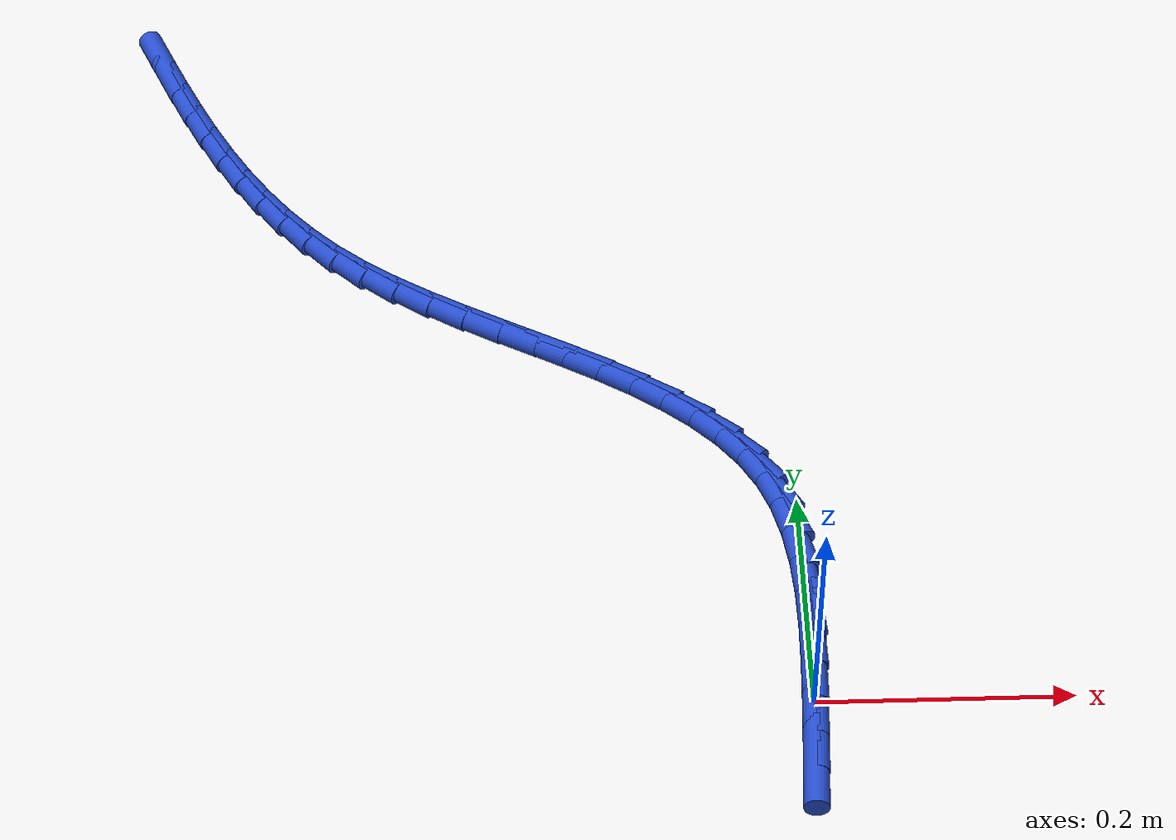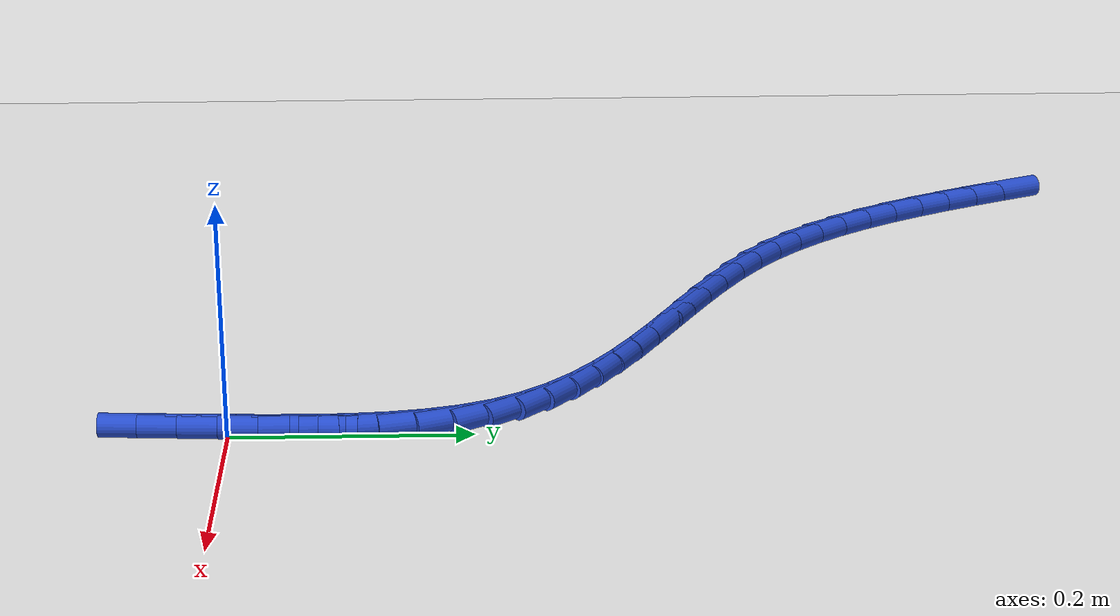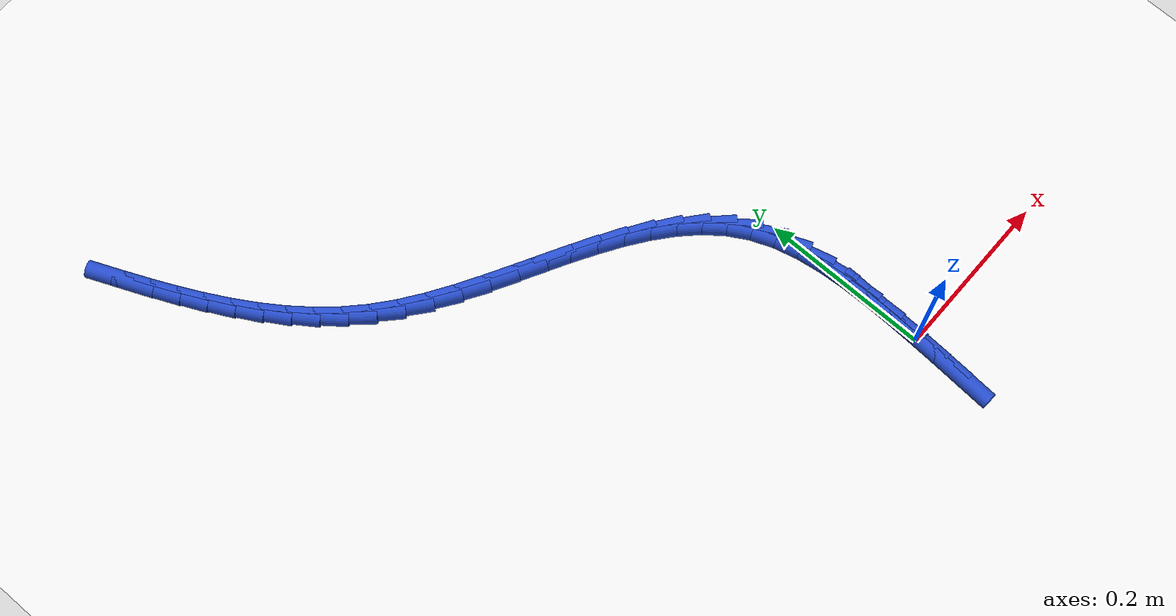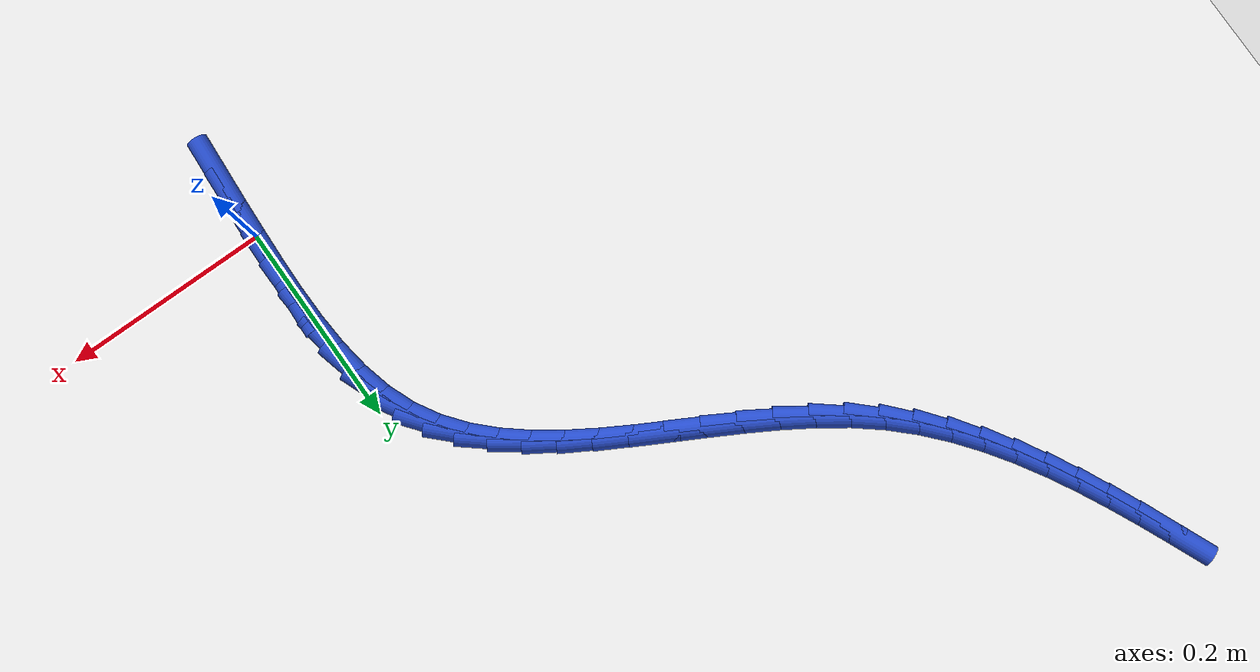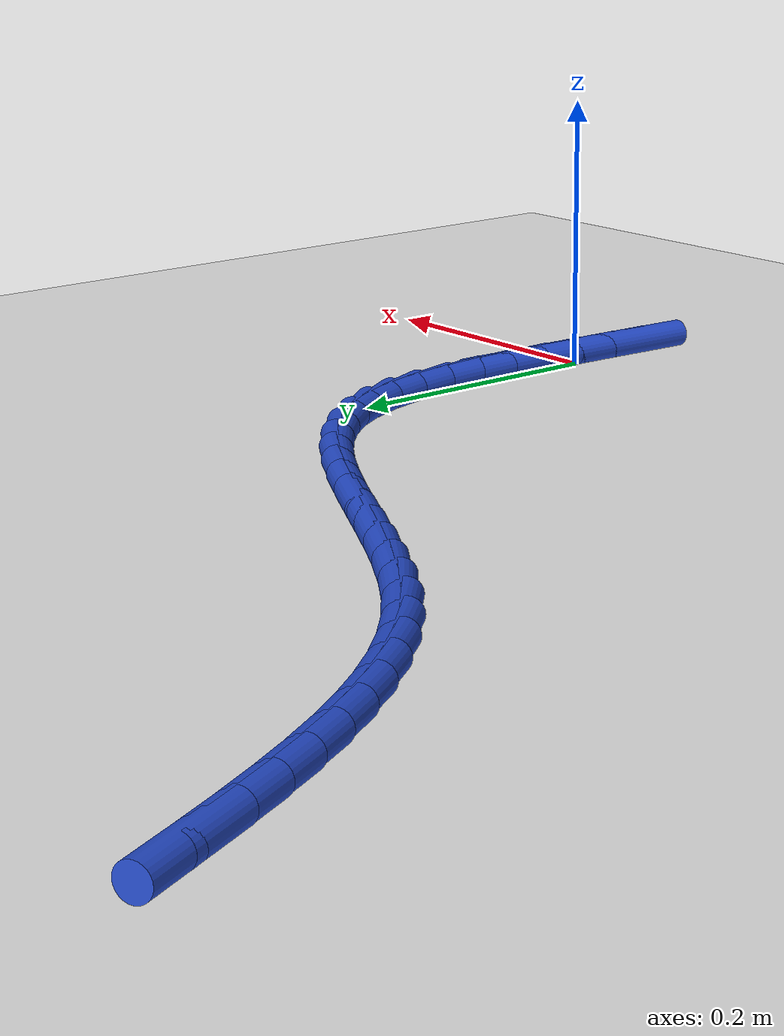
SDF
<sdf version="1.6">
 <world name="default">
  <model name="ground_plane">
   <static>1</static>
   <link name="link">
    <collision name="collision">
     <geometry><plane><normal>0 0 1</normal><size>100 100</size></plane></geometry>
     <surface><friction><ode><mu>100</mu><mu2>50</mu2></ode></friction></surface>
    </collision>
    <visual name="visual">
     <cast_shadows>0</cast_shadows>
     <geometry><plane><normal>0 0 1</normal><size>100 100</size></plane></geometry>
     <material>
      <script><uri>file://media/materials/scripts/gazebo.material</uri><name>Gazebo/WhiteGlow</name></script>
     </material>
    </visual>
   </link>
  </model>
  <model name="line">
   <link name="link_0">
    <pose>-6.505213034913027e-19 3.469446951953614e-17 0.01 0 1.57 1.529829881621226</pose>
    <collision name="collision">
     <geometry><cylinder><radius>0.01</radius><length>0.08</length></cylinder></geometry>
    </collision>
    <visual name="visual">
     <material>
      <script><name>Gazebo/Blue</name><uri>file://media/materials/scripts/gazebo.material</uri></script>
     </material>
     <geometry><cylinder><radius>0.01</radius><length>0.08</length></cylinder></geometry>
    </visual>
   </link>
   <link name="link_1">
    <pose>0.0013395285515980372 0.03267989467079061 0.01 0 1.57 1.5513439483667566</pose>
    <collision name="collision">
     <geometry><cylinder><radius>0.01</radius><length>0.08</length></cylinder></geometry>
    </collision>
    <visual name="visual">
     <material>
      <script><name>Gazebo/Blue</name><uri>file://media/materials/scripts/gazebo.material</uri></script>
     </material>
     <geometry><cylinder><radius>0.01</radius><length>0.08</length></cylinder></geometry>
    </visual>
   </link>
   <link name="link_2">
    <pose>0.001975951728893649 0.06539275312661427 0.01 0 1.57 -1.5528110485071946</pose>
    <collision name="collision">
     <geometry><cylinder><radius>0.01</radius><length>0.08</length></cylinder></geometry>
    </collision>
    <visual name="visual">
     <material>
      <script><name>Gazebo/Blue</name><uri>file://media/materials/scripts/gazebo.material</uri></script>
     </material>
     <geometry><cylinder><radius>0.01</radius><length>0.08</length></cylinder></geometry>
    </visual>
   </link>
   <link name="link_3">
    <pose>0.0013943547094076732 0.09772665972823673 0.01 0 1.57 -1.4975506433726895</pose>
    <collision name="collision">
     <geometry><cylinder><radius>0.01</radius><length>0.08</length></cylinder></geometry>
    </collision>
    <visual name="visual">
     <material>
      <script><name>Gazebo/Blue</name><uri>file://media/materials/scripts/gazebo.material</uri></script>
     </material>
     <geometry><cylinder><radius>0.01</radius><length>0.08</length></cylinder></geometry>
    </visual>
   </link>
   <link name="link_4">
    <pose>-0.0009201773293390537 0.1292696988364237 0.01 0 1.57 -1.4215407506581588</pose>
    <collision name="collision">
     <geometry><cylinder><radius>0.01</radius><length>0.08</length></cylinder></geometry>
    </collision>
    <visual name="visual">
     <material>
      <script><name>Gazebo/Blue</name><uri>file://media/materials/scripts/gazebo.material</uri></script>
     </material>
     <geometry><cylinder><radius>0.01</radius><length>0.08</length></cylinder></geometry>
    </visual>
   </link>
   <link name="link_5">
    <pose>-0.005482559209825691 0.15960995481194085 0.01 0 1.57 -1.321113114206973</pose>
    <collision name="collision">
     <geometry><cylinder><radius>0.01</radius><length>0.08</length></cylinder></geometry>
    </collision>
    <visual name="visual">
     <material>
      <script><name>Gazebo/Blue</name><uri>file://media/materials/scripts/gazebo.material</uri></script>
     </material>
     <geometry><cylinder><radius>0.01</radius><length>0.08</length></cylinder></geometry>
    </visual>
   </link>
   <link name="link_6">
    <pose>-0.012807705754531409 0.1883355120155538 0.01 0 1.57 -1.1927705815434022</pose>
    <collision name="collision">
     <geometry><cylinder><radius>0.01</radius><length>0.08</length></cylinder></geometry>
    </collision>
    <visual name="visual">
     <material>
      <script><name>Gazebo/Blue</name><uri>file://media/materials/scripts/gazebo.material</uri></script>
     </material>
     <geometry><cylinder><radius>0.01</radius><length>0.08</length></cylinder></geometry>
    </visual>
   </link>
   <link name="link_7">
    <pose>-0.023410531783463372 0.21503445480988986 0.01 0 1.57 -1.042246012458625</pose>
    <collision name="collision">
     <geometry><cylinder><radius>0.01</radius><length>0.08</length></cylinder></geometry>
    </collision>
    <visual name="visual">
     <material>
      <script><name>Gazebo/Blue</name><uri>file://media/materials/scripts/gazebo.material</uri></script>
     </material>
     <geometry><cylinder><radius>0.01</radius><length>0.08</length></cylinder></geometry>
    </visual>
   </link>
   <link name="link_8">
    <pose>-0.037647566932659235 0.2394141376411778 0.01 0 1.57 -0.9013980884721358</pose>
    <collision name="collision">
     <geometry><cylinder><radius>0.01</radius><length>0.08</length></cylinder></geometry>
    </collision>
    <visual name="visual">
     <material>
      <script><name>Gazebo/Blue</name><uri>file://media/materials/scripts/gazebo.material</uri></script>
     </material>
     <geometry><cylinder><radius>0.01</radius><length>0.08</length></cylinder></geometry>
    </visual>
   </link>
   <link name="link_9">
    <pose>-0.05524654389775431 0.2616554230311535 0.01 0 1.57 -0.7821884065468719</pose>
    <collision name="collision">
     <geometry><cylinder><radius>0.01</radius><length>0.08</length></cylinder></geometry>
    </collision>
    <visual name="visual">
     <material>
      <script><name>Gazebo/Blue</name><uri>file://media/materials/scripts/gazebo.material</uri></script>
     </material>
     <geometry><cylinder><radius>0.01</radius><length>0.08</length></cylinder></geometry>
    </visual>
   </link>
   <link name="link_10">
    <pose>-0.07577917322147816 0.28205666413264835 0.01 0 1.57 -0.6859968358805981</pose>
    <collision name="collision">
     <geometry><cylinder><radius>0.01</radius><length>0.08</length></cylinder></geometry>
    </collision>
    <visual name="visual">
     <material>
      <script><name>Gazebo/Blue</name><uri>file://media/materials/scripts/gazebo.material</uri></script>
     </material>
     <geometry><cylinder><radius>0.01</radius><length>0.08</length></cylinder></geometry>
    </visual>
   </link>
   <link name="link_11">
    <pose>-0.09881716544656031 0.30091621409849406 0.01 0 1.57 -0.6116784188423741</pose>
    <collision name="collision">
     <geometry><cylinder><radius>0.01</radius><length>0.08</length></cylinder></geometry>
    </collision>
    <visual name="visual">
     <material>
      <script><name>Gazebo/Blue</name><uri>file://media/materials/scripts/gazebo.material</uri></script>
     </material>
     <geometry><cylinder><radius>0.01</radius><length>0.08</length></cylinder></geometry>
    </visual>
   </link>
   <link name="link_12">
    <pose>-0.12393223111573032 0.31853242608152205 0.01 0 1.57 -0.5570884559378451</pose>
    <collision name="collision">
     <geometry><cylinder><radius>0.01</radius><length>0.08</length></cylinder></geometry>
    </collision>
    <visual name="visual">
     <material>
      <script><name>Gazebo/Blue</name><uri>file://media/materials/scripts/gazebo.material</uri></script>
     </material>
     <geometry><cylinder><radius>0.01</radius><length>0.08</length></cylinder></geometry>
    </visual>
   </link>
   <link name="link_13">
    <pose>-0.15069608077171773 0.33520365323456364 0.01 0 1.57 -0.520049197506985</pose>
    <collision name="collision">
     <geometry><cylinder><radius>0.01</radius><length>0.08</length></cylinder></geometry>
    </collision>
    <visual name="visual">
     <material>
      <script><name>Gazebo/Blue</name><uri>file://media/materials/scripts/gazebo.material</uri></script>
     </material>
     <geometry><cylinder><radius>0.01</radius><length>0.08</length></cylinder></geometry>
    </visual>
   </link>
   <link name="link_14">
    <pose>-0.1786804249572521 0.3512282487104506 0.01 0 1.57 -0.49881138537012626</pose>
    <collision name="collision">
     <geometry><cylinder><radius>0.01</radius><length>0.08</length></cylinder></geometry>
    </collision>
    <visual name="visual">
     <material>
      <script><name>Gazebo/Blue</name><uri>file://media/materials/scripts/gazebo.material</uri></script>
     </material>
     <geometry><cylinder><radius>0.01</radius><length>0.08</length></cylinder></geometry>
    </visual>
   </link>
   <link name="link_15">
    <pose>-0.20745697421506293 0.3669045656620144 0.01 0 1.57 -0.4922204672798907</pose>
    <collision name="collision">
     <geometry><cylinder><radius>0.01</radius><length>0.08</length></cylinder></geometry>
    </collision>
    <visual name="visual">
     <material>
      <script><name>Gazebo/Blue</name><uri>file://media/materials/scripts/gazebo.material</uri></script>
     </material>
     <geometry><cylinder><radius>0.01</radius><length>0.08</length></cylinder></geometry>
    </visual>
   </link>
   <link name="link_16">
    <pose>-0.23659743908787975 0.3825309572420863 0.01 0 1.57 -0.4997477634314134</pose>
    <collision name="collision">
     <geometry><cylinder><radius>0.01</radius><length>0.08</length></cylinder></geometry>
    </collision>
    <visual name="visual">
     <material>
      <script><name>Gazebo/Blue</name><uri>file://media/materials/scripts/gazebo.material</uri></script>
     </material>
     <geometry><cylinder><radius>0.01</radius><length>0.08</length></cylinder></geometry>
    </visual>
   </link>
   <link name="link_17">
    <pose>-0.2656735301184322 0.39840577660349796 0.01 0 1.57 -0.5214695108505973</pose>
    <collision name="collision">
     <geometry><cylinder><radius>0.01</radius><length>0.08</length></cylinder></geometry>
    </collision>
    <visual name="visual">
     <material>
      <script><name>Gazebo/Blue</name><uri>file://media/materials/scripts/gazebo.material</uri></script>
     </material>
     <geometry><cylinder><radius>0.01</radius><length>0.08</length></cylinder></geometry>
    </visual>
   </link>
   <link name="link_18">
    <pose>-0.2942569578494497 0.4148273768990809 0.01 0 1.57 -0.558019080074125</pose>
    <collision name="collision">
     <geometry><cylinder><radius>0.01</radius><length>0.08</length></cylinder></geometry>
    </collision>
    <visual name="visual">
     <material>
      <script><name>Gazebo/Blue</name><uri>file://media/materials/scripts/gazebo.material</uri></script>
     </material>
     <geometry><cylinder><radius>0.01</radius><length>0.08</length></cylinder></geometry>
    </visual>
   </link>
   <link name="link_19">
    <pose>-0.32191943282366187 0.4320941112816665 0.01 0 1.57 -0.6104953210205936</pose>
    <collision name="collision">
     <geometry><cylinder><radius>0.01</radius><length>0.08</length></cylinder></geometry>
    </collision>
    <visual name="visual">
     <material>
      <script><name>Gazebo/Blue</name><uri>file://media/materials/scripts/gazebo.material</uri></script>
     </material>
     <geometry><cylinder><radius>0.01</radius><length>0.08</length></cylinder></geometry>
    </visual>
   </link>
   <link name="link_20">
    <pose>-0.34823266558379834 0.4505043329040864 0.01 0 1.57 -0.6802410978289483</pose>
    <collision name="collision">
     <geometry><cylinder><radius>0.01</radius><length>0.08</length></cylinder></geometry>
    </collision>
    <visual name="visual">
     <material>
      <script><name>Gazebo/Blue</name><uri>file://media/materials/scripts/gazebo.material</uri></script>
     </material>
     <geometry><cylinder><radius>0.01</radius><length>0.08</length></cylinder></geometry>
    </visual>
   </link>
   <link name="link_21">
    <pose>-0.37276914222797386 0.4703558199147374 0.01 0 1.57 -0.7616334286397187</pose>
    <collision name="collision">
     <geometry><cylinder><radius>0.01</radius><length>0.08</length></cylinder></geometry>
    </collision>
    <visual name="visual">
     <material>
      <script><name>Gazebo/Blue</name><uri>file://media/materials/scripts/gazebo.material</uri></script>
     </material>
     <geometry><cylinder><radius>0.01</radius><length>0.08</length></cylinder></geometry>
    </visual>
   </link>
   <link name="link_22">
    <pose>-0.395275577541639 0.4918171755896307 0.01 0 1.57 -0.8388582674073612</pose>
    <collision name="collision">
     <geometry><cylinder><radius>0.01</radius><length>0.08</length></cylinder></geometry>
    </collision>
    <visual name="visual">
     <material>
      <script><name>Gazebo/Blue</name><uri>file://media/materials/scripts/gazebo.material</uri></script>
     </material>
     <geometry><cylinder><radius>0.01</radius><length>0.08</length></cylinder></geometry>
    </visual>
   </link>
   <link name="link_23">
    <pose>-0.41589234574606965 0.5147651402046992 0.01 0 1.57 -0.9086278335481897</pose>
    <collision name="collision">
     <geometry><cylinder><radius>0.01</radius><length>0.08</length></cylinder></geometry>
    </collision>
    <visual name="visual">
     <material>
      <script><name>Gazebo/Blue</name><uri>file://media/materials/scripts/gazebo.material</uri></script>
     </material>
     <geometry><cylinder><radius>0.01</radius><length>0.08</length></cylinder></geometry>
    </visual>
   </link>
   <link name="link_24">
    <pose>-0.434813858648778 0.5390363900348619 0.01 0 1.57 -0.9702008232198723</pose>
    <collision name="collision">
     <geometry><cylinder><radius>0.01</radius><length>0.08</length></cylinder></geometry>
    </collision>
    <visual name="visual">
     <material>
      <script><name>Gazebo/Blue</name><uri>file://media/materials/scripts/gazebo.material</uri></script>
     </material>
     <geometry><cylinder><radius>0.01</radius><length>0.08</length></cylinder></geometry>
    </visual>
   </link>
   <link name="link_25">
    <pose>-0.45223452805727665 0.5644676013550373 0.01 0 1.57 -1.0232424873515744</pose>
    <collision name="collision">
     <geometry><cylinder><radius>0.01</radius><length>0.08</length></cylinder></geometry>
    </collision>
    <visual name="visual">
     <material>
      <script><name>Gazebo/Blue</name><uri>file://media/materials/scripts/gazebo.material</uri></script>
     </material>
     <geometry><cylinder><radius>0.01</radius><length>0.08</length></cylinder></geometry>
    </visual>
   </link>
   <link name="link_26">
    <pose>-0.46834876577907775 0.5908954504401436 0.01 0 1.57 -1.0677115628364142</pose>
    <collision name="collision">
     <geometry><cylinder><radius>0.01</radius><length>0.08</length></cylinder></geometry>
    </collision>
    <visual name="visual">
     <material>
      <script><name>Gazebo/Blue</name><uri>file://media/materials/scripts/gazebo.material</uri></script>
     </material>
     <geometry><cylinder><radius>0.01</radius><length>0.08</length></cylinder></geometry>
    </visual>
   </link>
   <link name="link_27">
    <pose>-0.4833509836216941 0.6181566135651002 0.01 0 1.57 -1.1037452056120285</pose>
    <collision name="collision">
     <geometry><cylinder><radius>0.01</radius><length>0.08</length></cylinder></geometry>
    </collision>
    <visual name="visual">
     <material>
      <script><name>Gazebo/Blue</name><uri>file://media/materials/scripts/gazebo.material</uri></script>
     </material>
     <geometry><cylinder><radius>0.01</radius><length>0.08</length></cylinder></geometry>
    </visual>
   </link>
   <link name="link_28">
    <pose>-0.4974355933926377 0.6460877670048252 0.01 0 1.57 -1.1315610788521993</pose>
    <collision name="collision">
     <geometry><cylinder><radius>0.01</radius><length>0.08</length></cylinder></geometry>
    </collision>
    <visual name="visual">
     <material>
      <script><name>Gazebo/Blue</name><uri>file://media/materials/scripts/gazebo.material</uri></script>
     </material>
     <geometry><cylinder><radius>0.01</radius><length>0.08</length></cylinder></geometry>
    </visual>
   </link>
   <link name="link_29">
    <pose>-0.5107970068994212 0.6745255870342374 0.01 0 1.57 -1.1513830278465342</pose>
    <collision name="collision">
     <geometry><cylinder><radius>0.01</radius><length>0.08</length></cylinder></geometry>
    </collision>
    <visual name="visual">
     <material>
      <script><name>Gazebo/Blue</name><uri>file://media/materials/scripts/gazebo.material</uri></script>
     </material>
     <geometry><cylinder><radius>0.01</radius><length>0.08</length></cylinder></geometry>
    </visual>
   </link>
   <link name="link_30">
    <pose>-0.5236296359495568 0.7033067499282553 0.01 0 1.57 -1.1633891805203649</pose>
    <collision name="collision">
     <geometry><cylinder><radius>0.01</radius><length>0.08</length></cylinder></geometry>
    </collision>
    <visual name="visual">
     <material>
      <script><name>Gazebo/Blue</name><uri>file://media/materials/scripts/gazebo.material</uri></script>
     </material>
     <geometry><cylinder><radius>0.01</radius><length>0.08</length></cylinder></geometry>
    </visual>
   </link>
   <link name="link_288">
    <pose>-0.003605320152922596 -0.06412185109285297 0.01 0 1.57 1.509032629629555</pose>
    <collision name="collision">
     <geometry><cylinder><radius>0.01</radius><length>0.08</length></cylinder></geometry>
    </collision>
    <visual name="visual">
     <material>
      <script><name>Gazebo/Blue</name><uri>file://media/materials/scripts/gazebo.material</uri></script>
     </material>
     <geometry><cylinder><radius>0.01</radius><length>0.08</length></cylinder></geometry>
    </visual>
   </link>
   <link name="link_289">
    <pose>-0.0016372948805133025 -0.03229859220443694 0.01 0 1.57 1.5201472284441908</pose>
    <collision name="collision">
     <geometry><cylinder><radius>0.01</radius><length>0.08</length></cylinder></geometry>
    </collision>
    <visual name="visual">
     <material>
      <script><name>Gazebo/Blue</name><uri>file://media/materials/scripts/gazebo.material</uri></script>
     </material>
     <geometry><cylinder><radius>0.01</radius><length>0.08</length></cylinder></geometry>
    </visual>
   </link>
   <link name="link_290">
    <pose>-1.5395670849294163e-17 -2.220446049250313e-16 0.01 0 1.57 1.5265689041654618</pose>
    <collision name="collision">
     <geometry><cylinder><radius>0.01</radius><length>0.08</length></cylinder></geometry>
    </collision>
    <visual name="visual">
     <material>
      <script><name>Gazebo/Blue</name><uri>file://media/materials/scripts/gazebo.material</uri></script>
     </material>
     <geometry><cylinder><radius>0.01</radius><length>0.08</length></cylinder></geometry>
    </visual>
   </link>
   <link name="link_291">
    <pose>0.0014491043286899645 0.032743471628702836 0.01 0 1.57 1.5284952000434882</pose>
    <collision name="collision">
     <geometry><cylinder><radius>0.01</radius><length>0.08</length></cylinder></geometry>
    </collision>
    <visual name="visual">
     <material>
      <script><name>Gazebo/Blue</name><uri>file://media/materials/scripts/gazebo.material</uri></script>
     </material>
     <geometry><cylinder><radius>0.01</radius><length>0.08</length></cylinder></geometry>
    </visual>
   </link>
   <link name="link_292">
    <pose>0.002852557945629516 0.06590136878992219 0.01 0 1.57 1.5275380687741646</pose>
    <collision name="collision">
     <geometry><cylinder><radius>0.01</radius><length>0.08</length></cylinder></geometry>
    </collision>
    <visual name="visual">
     <material>
      <script><name>Gazebo/Blue</name><uri>file://media/materials/scripts/gazebo.material</uri></script>
     </material>
     <geometry><cylinder><radius>0.01</radius><length>0.08</length></cylinder></geometry>
    </visual>
   </link>
  </model>
 </world>
</sdf>
